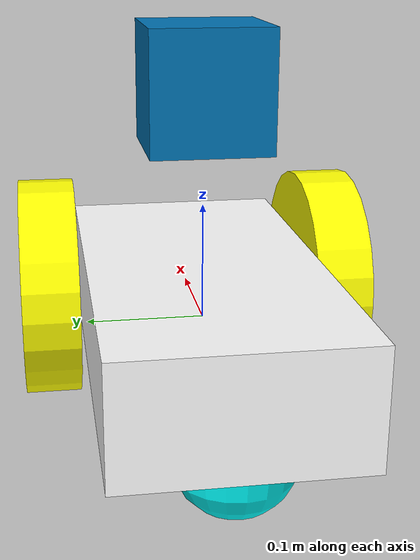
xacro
<?xml version="1.0"?>
<robot name="mabot" xmlns:xacro="http://ros.org/wiki/xacro">
  <xacro:include filename="$(find mabot_description)/urdf/body/body.urdf.xacro"/>
  <xacro:include filename="$(find mabot_description)/urdf/wheel/wheel.urdf.xacro"/>
  <xacro:include filename="$(find mabot_description)/urdf/caster/caster.urdf.xacro"/>
  <xacro:include filename="$(find mabot_description)/urdf/sensors/lrf.urdf.xacro"/>
  <link name="base_footprint"/>

  <xacro:base parent="base_footprint">
    <origin xyz="0 0 0"/>
  </xacro:base>

  <xacro:wheel prefix="right" parent="base_link">
    <origin xyz="0.1 -0.13 0.0" rpy="1.57 0 0" />
    <axis xyz="0 0 -1" />
  </xacro:wheel>

  <xacro:wheel prefix="left" parent="base_link">
    <origin xyz="0.1 0.13 0.0" rpy="-1.57 0 0" />
    <axis xyz="0 0 1" />
  </xacro:wheel>

  <xacro:lrf_sensor prefix="top" parent="base_link">
    <origin xyz="0 0 0.2" rpy="0 0 0" />
  </xacro:lrf_sensor>

  <xacro:caster parent="base_link">
    <origin xyz="-0.15 0 -0.05"/>
  </xacro:caster>

  <!-- ===========  Transmission ============ -->
  <xacro:wheel_trans prefix="right" interface="hardware_interface/VelocityJointInterface" />
  <xacro:wheel_trans prefix="left" interface="hardware_interface/VelocityJointInterface" />

  <!-- =============== Gazebo =============== -->
  <gazebo>
    <plugin name="gazebo_ros_control" filename="libgazebo_ros_control.so">
      <robotNamespace>/mabot</robotNamespace>
    </plugin>
  </gazebo>

  <xacro:base_gazebo/>
  <xacro:wheel_gazebo prefix="right" />
  <xacro:wheel_gazebo prefix="left" />
  <xacro:caster_gazebo/>
  <xacro:lrf_gazebo prefix="top" rad_range="${radians(180)}" min_range="0.1" max_range="5.0"/>
</robot>

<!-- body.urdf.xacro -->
<robot xmlns:xacro="http://ros.org/wiki/xacro">
  <xacro:include filename="$(find mabot_description)/urdf/body/body.gazebo.xacro" />
  <xacro:property name="M_PI" value="3.1415926535897931" />
  <xacro:property name="velocity_scale_factor" value="1.0"/>
  <xacro:macro name="base" params="parent *joint_origin">
    <joint name="base_joint" type="fixed">
      <xacro:insert_block name="joint_origin"/>
      <parent link="${parent}"/>
      <child link="base_link"/>
    </joint>

    <link name="base_link">
      <visual>
        <geometry>
          <box size="0.400 0.200 0.100"/>
        </geometry>
        <material name="gray">
          <color rgba="1 1 1 1"/>
        </material>
      </visual>

      <collision>
        <geometry>
          <box size="0.400 0.200 0.100"/>
        </geometry>
      </collision>

      <inertial>
        <origin xyz="0 0 0"/>
        <mass value="0.6"/>
        <inertia ixx="1e-3" ixy="0" ixz="0" iyy="1e-3" iyz="0" izz="1e-3"/>
      </inertial>
    </link>
  </xacro:macro>
</robot>

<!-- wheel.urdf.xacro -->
<robot xmlns:xacro="http://ros.org/wiki/xacro">
  <xacro:include filename="$(find mabot_description)/urdf/wheel/wheel.gazebo.xacro" />
  <xacro:include filename="$(find mabot_description)/urdf/wheel/wheel.transmission.xacro" />
  <xacro:macro name="wheel" params="prefix parent *joint_origin *joint_axis">
    <joint name="${prefix}_wheel_joint" type="continuous">
      <xacro:insert_block name="joint_origin" />
      <xacro:insert_block name="joint_axis" />
      <parent link="${parent}" />
      <child link="${prefix}_wheel" />
    </joint>

    <link name="${prefix}_wheel">
      <visual>
        <geometry>
          <cylinder radius="0.1" length="0.05"/>
        </geometry>
        <material name="yellow">
          <color rgba="1 1 0 1"/>
        </material>
      </visual>

      <collision>
        <geometry>
          <cylinder radius="0.1" length="0.05"/>
        </geometry>
      </collision>

      <inertial>
        <origin xyz="0.0 0.0 0.0" />
        <mass value="0.500"/>
        <inertia ixx="0.0013541667" ixy="0" ixz="0" iyy="0.0013541667" iyz="0" izz="0.0025"/>
      </inertial>
    </link>
  </xacro:macro>
</robot>

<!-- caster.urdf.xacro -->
<robot xmlns:xacro="http://ros.org/wiki/xacro">
  <xacro:include filename="$(find mabot_description)/urdf/caster/caster.gazebo.xacro" />
  <xacro:macro name="caster" params="parent *joint_origin">
    <joint name="$caster_joint" type="fixed">
      <xacro:insert_block name="joint_origin" />
      <parent link="${parent}" />
      <child link="caster_link" />
    </joint>

    <link name="caster_link">
      <visual>
        <geometry>
          <sphere radius="0.05"/>
        </geometry>
        <material name="cyan">
          <color rgba="0 1 1 1"/>
        </material>
      </visual>

      <collision>
        <geometry>
          <sphere radius="0.05"/>
        </geometry>
      </collision>

      <inertial>
        <origin xyz="0.0 0 0.0" />
        <mass value="0.50" />
        <inertia ixx="0.0025" ixy="0.0" iyy="0.0025" ixz="0.0" iyz="0.0" izz="0.0025" />
      </inertial>
    </link>
  </xacro:macro>
</robot>

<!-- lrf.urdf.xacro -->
<robot xmlns:xacro="http://ros.org/wiki/xacro">
  <xacro:include filename="$(find mabot_description)/urdf/sensors/lrf.gazebo.xacro" />
  <xacro:macro name="lrf_sensor" params="prefix parent *joint_origin">
    <joint name="${prefix}_lrf_joint" type="fixed">
      <xacro:insert_block name="joint_origin" />
      <parent link="${parent}" />
      <child link="${prefix}_lrf_link" />
    </joint>

    <link name="${prefix}_lrf_link">
      <visual>
        <geometry>
          <box size="0.1 0.1 0.1"/>
        </geometry>
      </visual>

      <collision>
      <origin xyz="0 0 0" rpy="0 0 0"/>
        <geometry>
          <box size="0.1 0.1 0.1"/>
        </geometry>
      </collision>

      <inertial>
        <mass value="1e-5" />
        <origin xyz="0 0 0" rpy="0 0 0"/>
        <inertia ixx="1e-6" ixy="0" ixz="0" iyy="1e-6" iyz="0" izz="1e-6" />
      </inertial>
    </link>
  </xacro:macro>
</robot>
